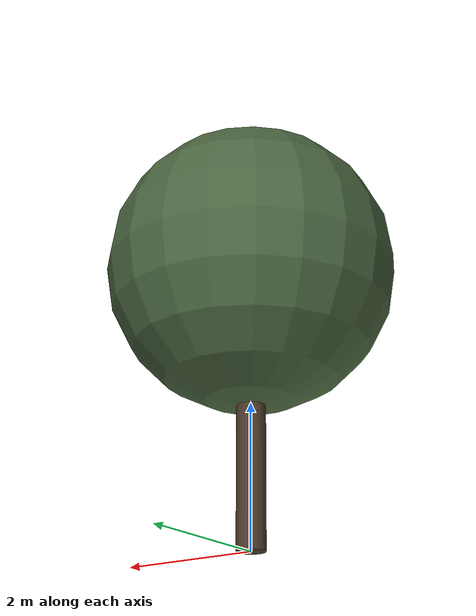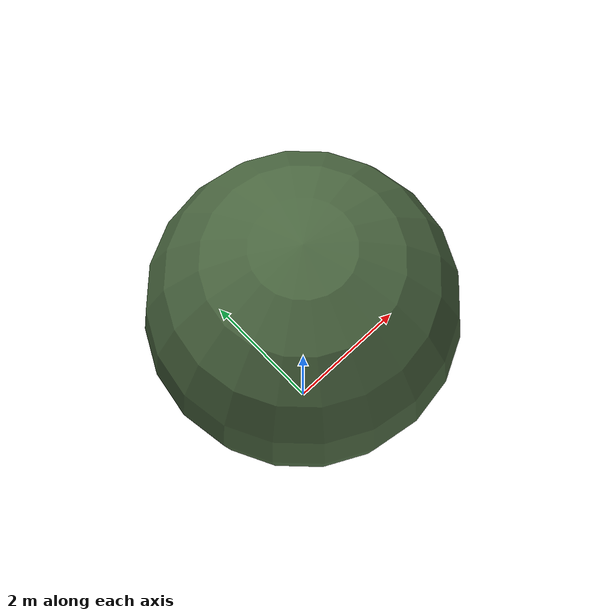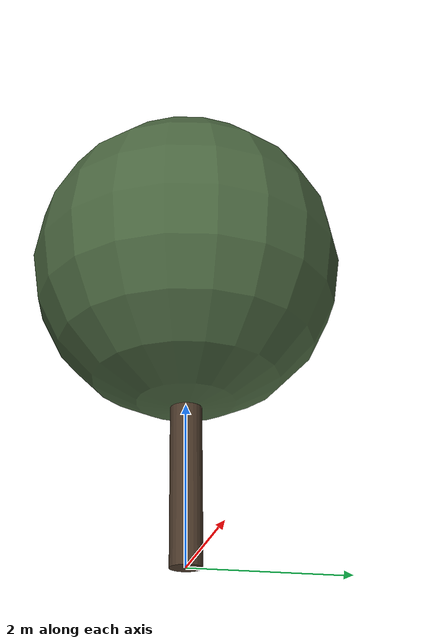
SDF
<?xml version="1.0" ?>
<sdf version="1.10">
  <model name="chene_vert_20">
    <static>true</static>

    <!-- Tronc -->
    <link name="trunk">
      <pose>0 0 1.6667938655338368 0 0 0</pose>
      <visual name="trunk_visual">
        <geometry>
          <cylinder>
            <radius>0.1979805064960613</radius>
            <length>3.3335877310676736</length>
          </cylinder>
        </geometry>
        <material>
          <ambient>0.29 0.22 0.16 1</ambient>
          <diffuse>0.29 0.22 0.16 1</diffuse>
          <specular>0.1 0.1 0.1 1</specular>
        </material>
      </visual>
      <collision name="trunk_collision">
        <geometry>
          <cylinder>
            <radius>0.1979805064960613</radius>
            <length>3.3335877310676736</length>
          </cylinder>
        </geometry>
      </collision>
    </link>

    <!-- Feuillage -->
    <link name="crown">
      <pose>0 0 3.9371438810471466 0 0 0</pose>
      <visual name="crown_visual">
        <geometry>
          <sphere>
              <radius>2.0118538332649107</radius>
            </sphere>
        </geometry>
        <material>
          <ambient>0.29 0.40 0.25 1</ambient>
          <diffuse>0.29 0.40 0.25 1</diffuse>
          <specular>0.1 0.1 0.1 1</specular>
        </material>
      </visual>
      <collision name="crown_collision">
        <geometry>
          <sphere>
            <radius>1.6094830666119286</radius>
          </sphere>
        </geometry>
      </collision>
    </link>

    <!-- Joint tronc-feuillage -->
    <joint name="trunk_crown_joint" type="fixed">
      <parent>trunk</parent>
      <child>crown</child>
    </joint>

  </model>
</sdf>
